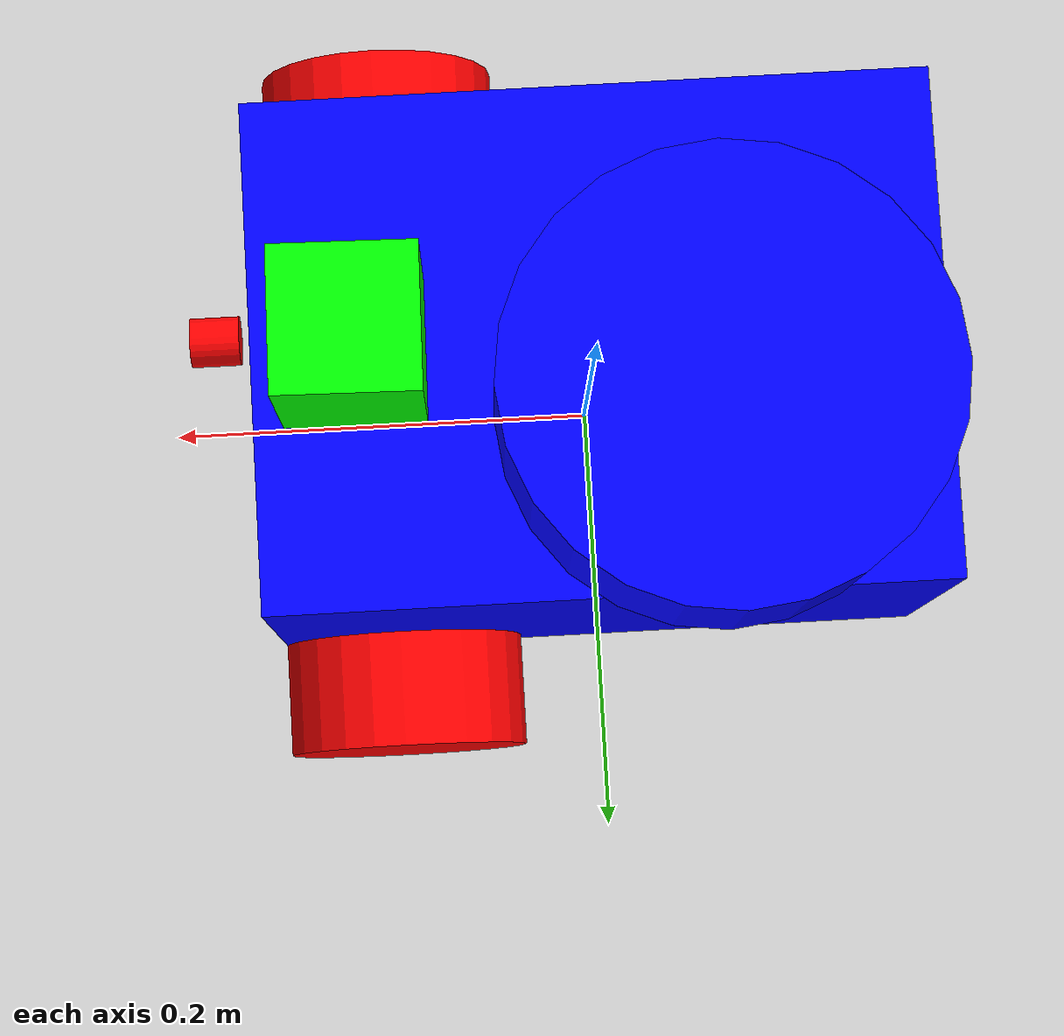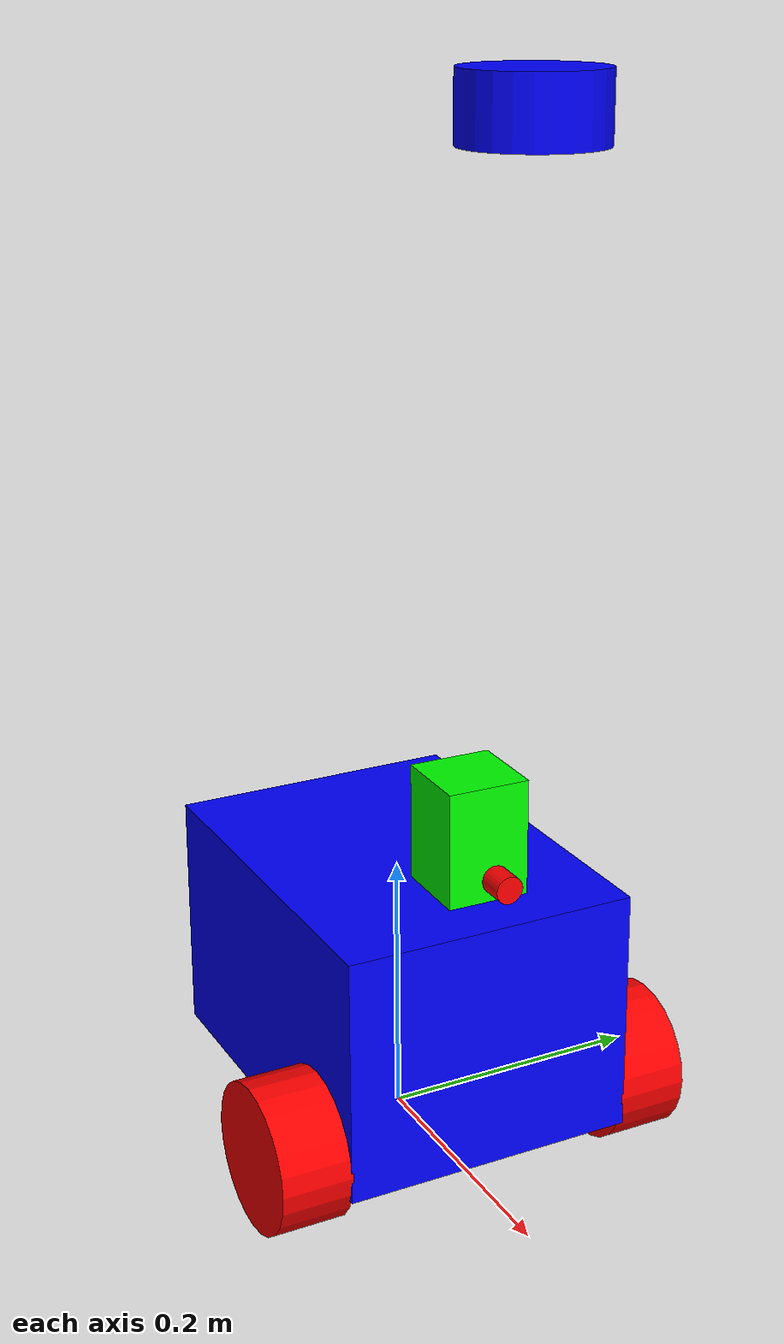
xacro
<?xml version="1.0"?>
<robot xmlns:xacro="http://www.ros.org/wiki/xacro" name="robomagellan">

    <xacro:property name="mainLength" value="0.295" />
    <xacro:property name="mainWidth" value="0.220" />
    <xacro:property name="mainHeight" value="0.184" />
    <xacro:property name="axleHeight" value="0.049" />
    <xacro:property name="imuHeight" value="0.743" />
    <xacro:property name="laserHeight" value="0.270" />

    <material name="blue">
        <color rgba="0 0 1 1"/>
    </material>
    <material name="red">
        <color rgba="1 0 0 1"/>
    </material>
    <material name="green">
        <color rgba="0 1 0 1"/>
    </material>
    <material name="yellow">
        <color rgba="0 0.5 0.5 1"/>
    </material>

    <link name="base_footprint"/>

    <joint name="base_footprint_to_base_link" type="fixed">
        <parent link="base_footprint"/>
        <child link="base_link"/>

        <origin xyz="0.093 0.0 ${axleHeight}" />
    </joint>

    <link name="base_link">
        <visual>
            <origin xyz="-0.093 0.0 0.072" rpy="0 0 0" />
            <geometry>
                <box size="${mainLength} ${mainWidth} ${mainHeight}" />
            </geometry>
            <material name="blue"/>
        </visual>
    </link>

    <joint name="base_link_to_left_wheel" type="fixed">
        <parent link="base_link"/>
        <child link="left_wheel"/>

        <origin xyz="0.0 0.135 0.0" />
    </joint>

    <link name="left_wheel">
        <visual>
            <origin xyz="0.0 0.0 0.0" rpy="1.570 0 0" />
            <geometry>
                <cylinder radius="0.055" length="0.053" />
            </geometry>
            <material name="red"/>
        </visual>
    </link>

    <joint name="base_link_to_right_wheel" type="fixed">
        <parent link="base_link"/>
        <child link="right_wheel"/>

        <origin xyz="0.0 -0.135 0.0" />
    </joint>

    <link name="right_wheel">
        <visual>
            <origin xyz="0.0 0.0 0.0" rpy="-1.570 0 0" />
            <geometry>
                <cylinder radius="0.055" length="0.053" />
            </geometry>
            <material name="red"/>
        </visual>
    </link>

    <joint name="base_link_to_imu" type="fixed">
        <parent link="base_link"/>
        <child link="imu"/>

        <origin xyz="-0.098 0.110 ${imuHeight-axleHeight}" />
    </joint>

    <link name="imu">
        <visual>
            <origin xyz="0.0 0.0 0.0" rpy="0 0 0" />
            <geometry>
                <cylinder radius="0.055" length="0.053" />
            </geometry>
            <material name="blue"/>
        </visual>
    </link>

    <joint name="base_link_to_camera_lens" type="fixed">
        <parent link="base_link"/>
        <child link="camera_lens"/>

        <origin xyz="0.065 0.000 0.203" />
    </joint>

    <link name="camera_lens">
    </link>

    <joint name="camera_lens_to_camera_lens_optical" type="fixed">
        <parent link="camera_lens"/>
        <child link="camera_lens_optical"/>

        <origin xyz="0 0 0" rpy="0.0 1.57 0.0" />
    </joint>

    <link name="camera_lens_optical">
        <visual>
            <geometry>
                <cylinder radius="0.01" length="0.02" />
            </geometry>
            <material name="red"/>
        </visual>
    </link>

    <joint name="base_link_to_infrared_forward" type="fixed">
        <parent link="base_link"/>
        <child link="infrared_forward"/>

        <origin xyz="0.047 0.0 0.005"/>
    </joint>

    <link name="infrared_forward">
        <visual>
            <geometry>
                <box size="0.01 0.032 0.013" />
            </geometry>
            <material name="yellow"/>
        </visual>
    </link>

    <joint name="base_link_to_infrared_aft" type="fixed">
        <parent link="base_link"/>
        <child link="infrared_aft"/>

        <origin xyz="-0.23 0.0 0.034" rpy="0.0 0.0 3.1415"/>
    </joint>

    <link name="infrared_aft">
        <visual>
            <geometry>
                <box size="0.01 0.032 0.013" />
            </geometry>
            <material name="yellow"/>
        </visual>
    </link>

    <joint name="base_link_to_laser" type="fixed">
        <parent link="base_link"/>
        <child link="laser"/>

        <origin xyz="0.010 0.004 ${laserHeight-axleHeight}"
                rpy="0.0 0.0 -0.02"/>
    </joint>

    <link name="laser">
        <visual>
            <geometry>
                <box size="0.060 0.060 0.085" />
            </geometry>
            <material name="green"/>
        </visual>
    </link>

</robot>
